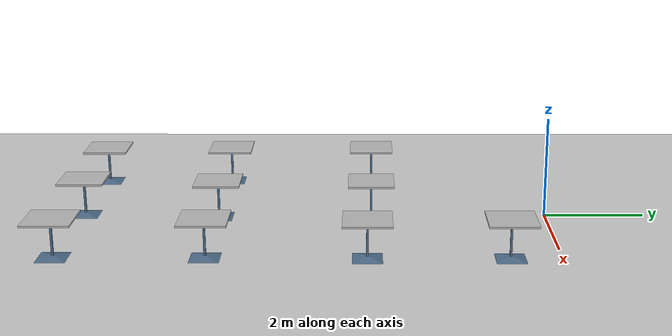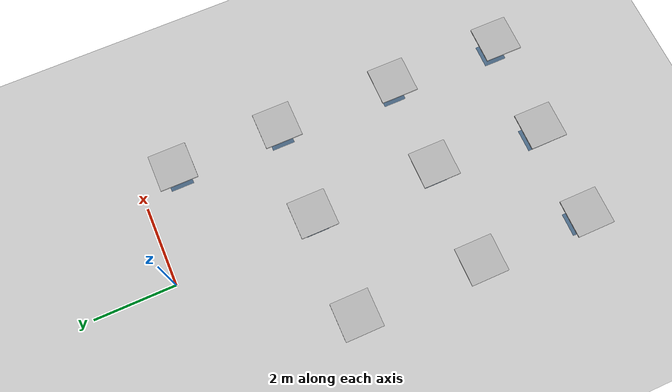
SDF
<sdf version="1.6">
 <world name="default">
  <light name="sun" type="directional">
   <pose>0 0 10 0 -0 0</pose>
   <diffuse>0.8 0.8 0.8 1</diffuse>
   <specular>0.2 0.2 0.2 1</specular>
   <attenuation>
    <range>1000</range>
    <constant>0.9</constant>
    <linear>0.01</linear>
    <quadratic>0.001</quadratic>
   </attenuation>
   <direction>-0.5 0.1 -0.9</direction>
  </light>
  <model name="ground_plane">
   <static>1</static>
   <link name="link">
    <collision name="collision">
     <geometry><plane><normal>0 0 1</normal><size>100 100</size></plane></geometry>
     <surface>
      <contact><collide_bitmask>65535</collide_bitmask></contact>
      <friction><ode><mu>100</mu><mu2>50</mu2></ode></friction>
     </surface>
    </collision>
    <visual name="visual">
     <cast_shadows>0</cast_shadows>
     <geometry><plane><normal>0 0 1</normal><size>100 100</size></plane></geometry>
     <material>
      <script><uri>file://media/materials/scripts/gazebo.material</uri><name>Gazebo/Grey</name></script>
     </material>
    </visual>
   </link>
  </model>
  <gravity>0 0 -9.8</gravity>
  <magnetic_field>6e-06 2.3e-05 -4.2e-05</magnetic_field>
  <atmosphere type="adiabatic"/>
  <physics name="default_physics" default="0" type="ode">
   <max_step_size>0.001</max_step_size>
   <real_time_factor>1</real_time_factor>
   <real_time_update_rate>1000</real_time_update_rate>
  </physics>
  <scene><ambient>0.4 0.4 0.4 1</ambient><background>0.7 0.7 0.7 1</background><shadows>1</shadows></scene>
  <spherical_coordinates>
   <surface_model>EARTH_WGS84</surface_model>
   <latitude_deg>0</latitude_deg>
   <longitude_deg>0</longitude_deg>
   <elevation>0</elevation>
   <heading_deg>0</heading_deg>
  </spherical_coordinates>
  <model name="cafe_table">
   <static>1</static>
   <link name="link">
    <collision name="surface">
     <pose>0 0 0.755 0 -0 0</pose>
     <geometry><box><size>0.913 0.913 0.04</size></box></geometry>
    </collision>
    <collision name="column">
     <pose>0 0 0.37 0 -0 0</pose>
     <geometry><box><size>0.042 0.042 0.74</size></box></geometry>
    </collision>
    <collision name="base">
     <pose>0 0 0.02 0 -0 0</pose>
     <geometry><box><size>0.56 0.56 0.04</size></box></geometry>
    </collision>
    <visual name="visual">
     <geometry><mesh><uri>model://cafe_table/meshes/cafe_table.dae</uri></mesh></geometry>
    </visual>
   </link>
   <pose>2.41579 -9.35019 0 0 -0 0</pose>
  </model>
  <model name="cafe_table_0">
   <static>1</static>
   <link name="link">
    <collision name="surface">
     <pose>0 0 0.755 0 -0 0</pose>
     <geometry><box><size>0.913 0.913 0.04</size></box></geometry>
    </collision>
    <collision name="column">
     <pose>0 0 0.37 0 -0 0</pose>
     <geometry><box><size>0.042 0.042 0.74</size></box></geometry>
    </collision>
    <collision name="base">
     <pose>0 0 0.02 0 -0 0</pose>
     <geometry><box><size>0.56 0.56 0.04</size></box></geometry>
    </collision>
    <visual name="visual">
     <geometry><mesh><uri>model://cafe_table/meshes/cafe_table.dae</uri></mesh></geometry>
    </visual>
   </link>
   <pose>-0.050378 -9.28352 0 0 -0 0</pose>
  </model>
  <model name="cafe_table_1">
   <static>1</static>
   <link name="link">
    <collision name="surface">
     <pose>0 0 0.755 0 -0 0</pose>
     <geometry><box><size>0.913 0.913 0.04</size></box></geometry>
    </collision>
    <collision name="column">
     <pose>0 0 0.37 0 -0 0</pose>
     <geometry><box><size>0.042 0.042 0.74</size></box></geometry>
    </collision>
    <collision name="base">
     <pose>0 0 0.02 0 -0 0</pose>
     <geometry><box><size>0.56 0.56 0.04</size></box></geometry>
    </collision>
    <visual name="visual">
     <geometry><mesh><uri>model://cafe_table/meshes/cafe_table.dae</uri></mesh></geometry>
    </visual>
   </link>
   <pose>-2.36364 -9.25401 0 0 -0 0</pose>
  </model>
  <model name="cafe_table_2">
   <static>1</static>
   <link name="link">
    <collision name="surface">
     <pose>0 0 0.755 0 -0 0</pose>
     <geometry><box><size>0.913 0.913 0.04</size></box></geometry>
    </collision>
    <collision name="column">
     <pose>0 0 0.37 0 -0 0</pose>
     <geometry><box><size>0.042 0.042 0.74</size></box></geometry>
    </collision>
    <collision name="base">
     <pose>0 0 0.02 0 -0 0</pose>
     <geometry><box><size>0.56 0.56 0.04</size></box></geometry>
    </collision>
    <visual name="visual">
     <geometry><mesh><uri>model://cafe_table/meshes/cafe_table.dae</uri></mesh></geometry>
    </visual>
   </link>
   <pose>2.42002 -6.55945 0 0 -0 0</pose>
  </model>
  <model name="cafe_table_3">
   <static>1</static>
   <link name="link">
    <collision name="surface">
     <pose>0 0 0.755 0 -0 0</pose>
     <geometry><box><size>0.913 0.913 0.04</size></box></geometry>
    </collision>
    <collision name="column">
     <pose>0 0 0.37 0 -0 0</pose>
     <geometry><box><size>0.042 0.042 0.74</size></box></geometry>
    </collision>
    <collision name="base">
     <pose>0 0 0.02 0 -0 0</pose>
     <geometry><box><size>0.56 0.56 0.04</size></box></geometry>
    </collision>
    <visual name="visual">
     <geometry><mesh><uri>model://cafe_table/meshes/cafe_table.dae</uri></mesh></geometry>
    </visual>
   </link>
   <pose>0.088577 -6.56385 0 0 -0 0</pose>
  </model>
  <model name="cafe_table_4">
   <static>1</static>
   <link name="link">
    <collision name="surface">
     <pose>0 0 0.755 0 -0 0</pose>
     <geometry><box><size>0.913 0.913 0.04</size></box></geometry>
    </collision>
    <collision name="column">
     <pose>0 0 0.37 0 -0 0</pose>
     <geometry><box><size>0.042 0.042 0.74</size></box></geometry>
    </collision>
    <collision name="base">
     <pose>0 0 0.02 0 -0 0</pose>
     <geometry><box><size>0.56 0.56 0.04</size></box></geometry>
    </collision>
    <visual name="visual">
     <geometry><mesh><uri>model://cafe_table/meshes/cafe_table.dae</uri></mesh></geometry>
    </visual>
   </link>
   <pose>-2.3951 -6.54818 0 0 -0 0</pose>
  </model>
  <model name="cafe_table_5">
   <static>1</static>
   <link name="link">
    <collision name="surface">
     <pose>0 0 0.755 0 -0 0</pose>
     <geometry><box><size>0.913 0.913 0.04</size></box></geometry>
    </collision>
    <collision name="column">
     <pose>0 0 0.37 0 -0 0</pose>
     <geometry><box><size>0.042 0.042 0.74</size></box></geometry>
    </collision>
    <collision name="base">
     <pose>0 0 0.02 0 -0 0</pose>
     <geometry><box><size>0.56 0.56 0.04</size></box></geometry>
    </collision>
    <visual name="visual">
     <geometry><mesh><uri>model://cafe_table/meshes/cafe_table.dae</uri></mesh></geometry>
    </visual>
   </link>
   <pose>2.46198 -3.5823 0 0 -0 0</pose>
  </model>
  <model name="cafe_table_6">
   <static>1</static>
   <link name="link">
    <collision name="surface">
     <pose>0 0 0.755 0 -0 0</pose>
     <geometry><box><size>0.913 0.913 0.04</size></box></geometry>
    </collision>
    <collision name="column">
     <pose>0 0 0.37 0 -0 0</pose>
     <geometry><box><size>0.042 0.042 0.74</size></box></geometry>
    </collision>
    <collision name="base">
     <pose>0 0 0.02 0 -0 0</pose>
     <geometry><box><size>0.56 0.56 0.04</size></box></geometry>
    </collision>
    <visual name="visual">
     <geometry><mesh><uri>model://cafe_table/meshes/cafe_table.dae</uri></mesh></geometry>
    </visual>
   </link>
   <pose>0.115209 -3.50172 0 0 -0 0</pose>
  </model>
  <model name="cafe_table_7">
   <static>1</static>
   <link name="link">
    <collision name="surface">
     <pose>0 0 0.755 0 -0 0</pose>
     <geometry><box><size>0.913 0.913 0.04</size></box></geometry>
    </collision>
    <collision name="column">
     <pose>0 0 0.37 0 -0 0</pose>
     <geometry><box><size>0.042 0.042 0.74</size></box></geometry>
    </collision>
    <collision name="base">
     <pose>0 0 0.02 0 -0 0</pose>
     <geometry><box><size>0.56 0.56 0.04</size></box></geometry>
    </collision>
    <visual name="visual">
     <geometry><mesh><uri>model://cafe_table/meshes/cafe_table.dae</uri></mesh></geometry>
    </visual>
   </link>
   <pose>-2.40249 -3.48563 0 0 -0 0</pose>
  </model>
  <model name="cafe_table_8">
   <static>1</static>
   <link name="link">
    <collision name="surface">
     <pose>0 0 0.755 0 -0 0</pose>
     <geometry><box><size>0.913 0.913 0.04</size></box></geometry>
    </collision>
    <collision name="column">
     <pose>0 0 0.37 0 -0 0</pose>
     <geometry><box><size>0.042 0.042 0.74</size></box></geometry>
    </collision>
    <collision name="base">
     <pose>0 0 0.02 0 -0 0</pose>
     <geometry><box><size>0.56 0.56 0.04</size></box></geometry>
    </collision>
    <visual name="visual">
     <geometry><mesh><uri>model://cafe_table/meshes/cafe_table.dae</uri></mesh></geometry>
    </visual>
   </link>
   <pose>2.46284 -0.961729 0 0 -0 0</pose>
  </model>
 </world>
</sdf>
